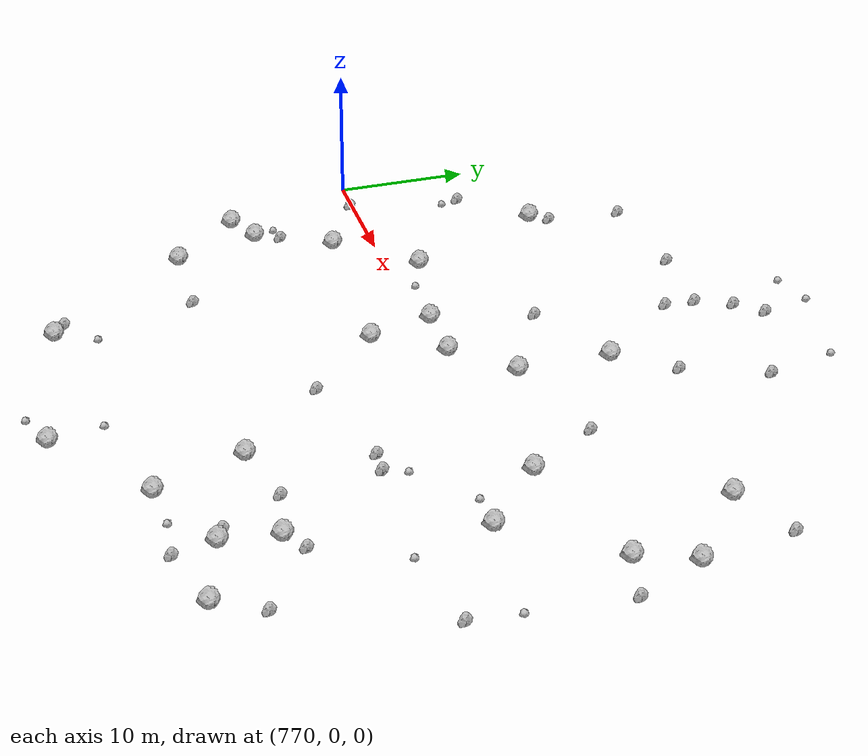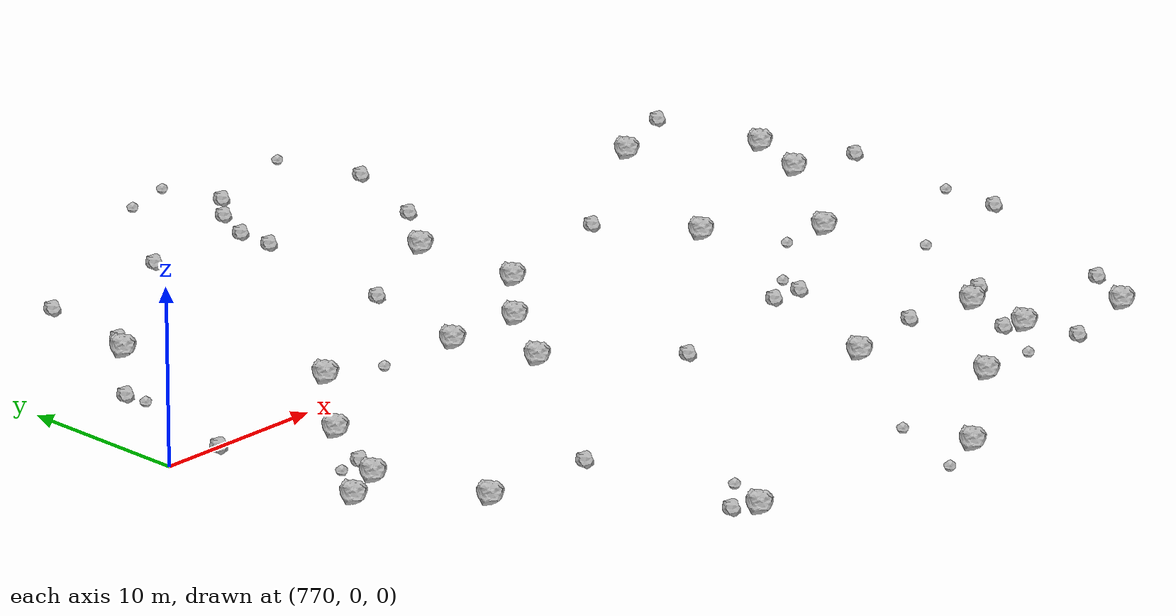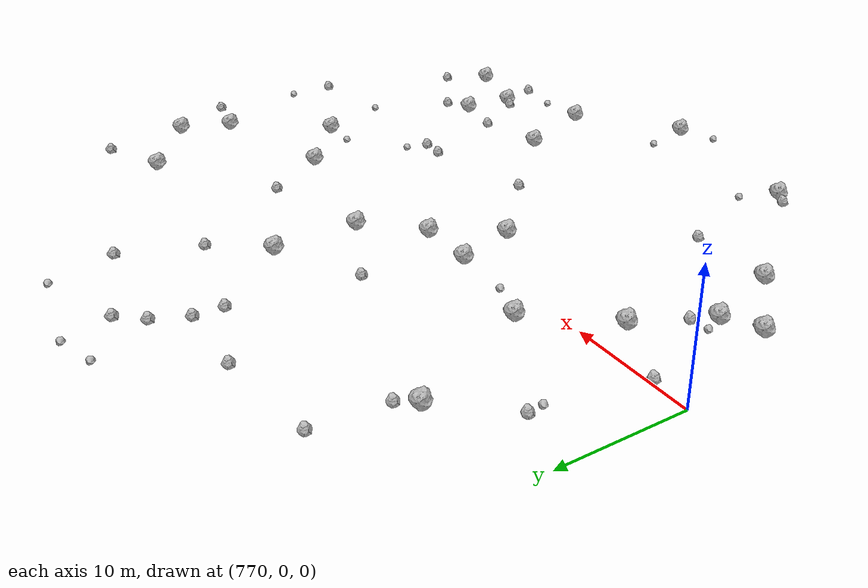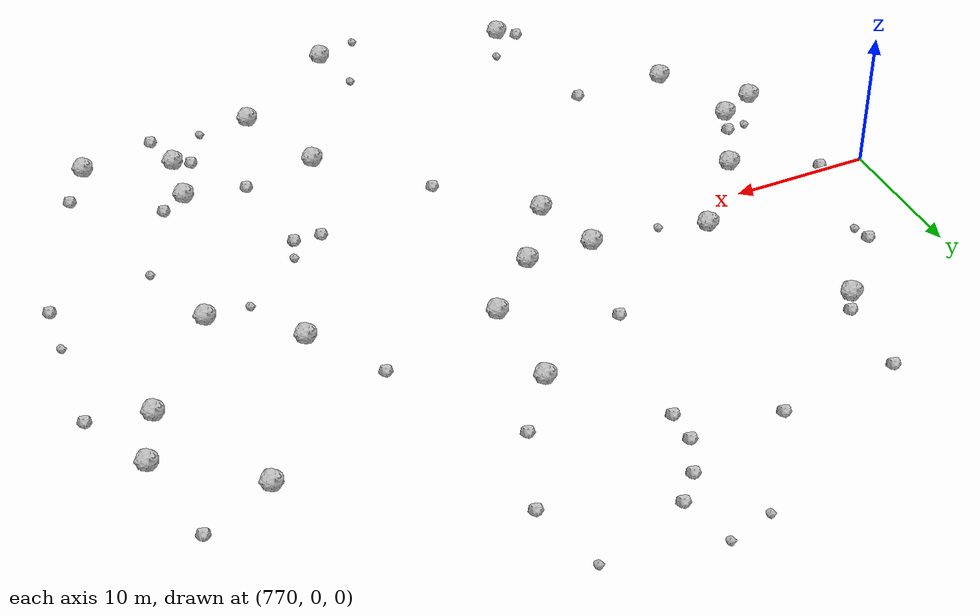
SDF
<sdf version="1.6">
 <world name="default">
  <include><uri>model://sun</uri></include>
  <model name="rock1_20_4">
   <include><uri>model://rock1</uri><pose>819.2122267680818 13.726930822318444 0.5 0 0 0</pose></include>
  </model>
  <model name="rock1_20_5">
   <include><uri>model://rock1</uri><pose>812.8698910632947 2.13392403625879 0.5 0 0 0</pose></include>
  </model>
  <model name="rock1_20_6">
   <include><uri>model://rock1</uri><pose>823.7663745739494 5.025370743478618 0.5 0 0 0</pose></include>
  </model>
  <model name="rock1_20_7">
   <include><uri>model://rock1</uri><pose>800.767374884966 4.966036264660211 0.5 0 0 0</pose></include>
  </model>
  <model name="rock1_20_8">
   <include><uri>model://rock1</uri><pose>805.7972809907315 -15.871346316119226 0.5 0 0 0</pose></include>
  </model>
  <model name="rock1_20_9">
   <include><uri>model://rock1</uri><pose>800.6672698656027 11.929296679306134 0.5 0 0 0</pose></include>
  </model>
  <model name="rock1_20_10">
   <include><uri>model://rock1</uri><pose>814.9256359065473 -19.624620930250273 0.5 0 0 0</pose></include>
  </model>
  <model name="rock1_20_11">
   <include><uri>model://rock1</uri><pose>808.3736025417923 -22.591839433050986 0.5 0 0 0</pose></include>
  </model>
  <model name="rock1_20_12">
   <include><uri>model://rock1</uri><pose>776.1875913763228 -8.725887405657822 0.5 0 0 0</pose></include>
  </model>
  <model name="rock1_20_13">
   <include><uri>model://rock1</uri><pose>778.232004607283 -15.144697974699175 0.5 0 0 0</pose></include>
  </model>
  <model name="rock1_20_14">
   <include><uri>model://rock1</uri><pose>818.123664055931 -2.297101878637946 0.5 0 0 0</pose></include>
  </model>
  <model name="rock1_20_15">
   <include><uri>model://rock1</uri><pose>779.0287651748309 -3.1421774853385003 0.5 0 0 0</pose></include>
  </model>
  <model name="rock1_20_16">
   <include><uri>model://rock1</uri><pose>825.3625804720275 9.085005775262786 0.5 0 0 0</pose></include>
  </model>
  <model name="rock1_20_17">
   <include><uri>model://rock1</uri><pose>800.5843930082755 -28.35805222895126 0.5 0 0 0</pose></include>
  </model>
  <model name="rock1_20_18">
   <include><uri>model://rock1</uri><pose>796.76404288395 0.9531455506280935 0.5 0 0 0</pose></include>
  </model>
  <model name="rock1_20_19">
   <include><uri>model://rock1</uri><pose>791.9983122103687 0.9939554064657976 0.5 0 0 0</pose></include>
  </model>
  <model name="rock1_20_20">
   <include><uri>model://rock1</uri><pose>786.8141923905898 -25.932583552114814 0.5 0 0 0</pose></include>
  </model>
  <model name="rock1_20_21">
   <include><uri>model://rock1</uri><pose>820.975538396199 -21.386264026928657 0.5 0 0 0</pose></include>
  </model>
  <model name="rock1_20_22">
   <include><uri>model://rock1</uri><pose>793.444368105625 -3.9052219395286905 0.5 0 0 0</pose></include>
  </model>
  <model name="rock1_20_23">
   <include><uri>model://rock1</uri><pose>773.4678252715418 -10.028626732308485 0.5 0 0 0</pose></include>
  </model>
  <model name="rock1_20_24">
   <include><uri>model://rock1</uri><pose>815.416069218849 -15.494813719446437 0.5 0 0 0</pose></include>
  </model>
  <model name="rock1_20_25">
   <include><uri>model://rock1</uri><pose>783.8724518140875 2.4659675741417644 0.5 0 0 0</pose></include>
  </model>
  <model name="rock1_20_26">
   <include><uri>model://rock1</uri><pose>779.0170532266636 12.905233162074921 0.5 0 0 0</pose></include>
  </model>
  <model name="rock2_20_0">
   <include><uri>model://rock2</uri><pose>788.781460003559 20.82332962483406 0.3 0 0 0</pose></include>
  </model>
  <model name="rock2_20_1">
   <include><uri>model://rock2</uri><pose>824.1145693096316 16.015499300134778 0.3 0 0 0</pose></include>
  </model>
  <model name="rock2_20_2">
   <include><uri>model://rock2</uri><pose>773.236584625596 -0.2887837342770929 0.3 0 0 0</pose></include>
  </model>
  <model name="rock2_20_3">
   <include><uri>model://rock2</uri><pose>784.9249357601343 -15.357742992389188 0.3 0 0 0</pose></include>
  </model>
  <model name="rock2_20_4">
   <include><uri>model://rock2</uri><pose>817.1877962687516 -14.352855332947973 0.3 0 0 0</pose></include>
  </model>
  <model name="rock2_20_5">
   <include><uri>model://rock2</uri><pose>803.7610284520342 16.01082752088812 0.3 0 0 0</pose></include>
  </model>
  <model name="rock2_20_6">
   <include><uri>model://rock2</uri><pose>785.5333850152673 -25.06091136880211 0.3 0 0 0</pose></include>
  </model>
  <model name="rock2_20_7">
   <include><uri>model://rock2</uri><pose>799.239207884373 -9.374820069664736 0.3 0 0 0</pose></include>
  </model>
  <model name="rock2_20_8">
   <include><uri>model://rock2</uri><pose>810.1531161104435 -7.534109779792647 0.3 0 0 0</pose></include>
  </model>
  <model name="rock2_20_9">
   <include><uri>model://rock2</uri><pose>813.7368690168886 -19.07438994867377 0.3 0 0 0</pose></include>
  </model>
  <model name="rock2_20_10">
   <include><uri>model://rock2</uri><pose>780.3091576227553 19.909031166130404 0.3 0 0 0</pose></include>
  </model>
  <model name="rock2_20_11">
   <include><uri>model://rock2</uri><pose>806.1034666915405 22.10004656372847 0.3 0 0 0</pose></include>
  </model>
  <model name="rock2_20_12">
   <include><uri>model://rock2</uri><pose>796.3718677732103 23.19037551812452 0.3 0 0 0</pose></include>
  </model>
  <model name="rock2_20_13">
   <include><uri>model://rock2</uri><pose>795.0902903456181 18.2722659777829 0.3 0 0 0</pose></include>
  </model>
  <model name="rock2_20_14">
   <include><uri>model://rock2</uri><pose>795.1472368231631 20.571224280368412 0.3 0 0 0</pose></include>
  </model>
  <model name="rock2_20_15">
   <include><uri>model://rock2</uri><pose>793.7089021794848 8.498677074762938 0.3 0 0 0</pose></include>
  </model>
  <model name="rock2_20_16">
   <include><uri>model://rock2</uri><pose>822.7948286285163 -18.024385074496934 0.3 0 0 0</pose></include>
  </model>
  <model name="rock2_20_17">
   <include><uri>model://rock2</uri><pose>779.8799610919257 14.273919139191605 0.3 0 0 0</pose></include>
  </model>
  <model name="rock2_20_18">
   <include><uri>model://rock2</uri><pose>811.1050899273256 -14.668255922490356 0.3 0 0 0</pose></include>
  </model>
  <model name="rock2_20_19">
   <include><uri>model://rock2</uri><pose>774.6628461654554 8.232855976013617 0.3 0 0 0</pose></include>
  </model>
  <model name="rock2_20_20">
   <include><uri>model://rock2</uri><pose>827.0880069235768 -6.911397239155839 0.3 0 0 0</pose></include>
  </model>
  <model name="rock2_20_21">
   <include><uri>model://rock2</uri><pose>815.6294820280527 -22.712746357231914 0.3 0 0 0</pose></include>
  </model>
  <model name="rock2_20_22">
   <include><uri>model://rock2</uri><pose>827.7775006410365 4.098923380941599 0.3 0 0 0</pose></include>
  </model>
  <model name="rock2_20_23">
   <include><uri>model://rock2</uri><pose>798.0460738123323 25.055272689734146 0.3 0 0 0</pose></include>
  </model>
  <model name="rock2_20_24">
   <include><uri>model://rock2</uri><pose>809.4523994659032 7.341302595084592 0.3 0 0 0</pose></include>
  </model>
  <model name="rock2_20_25">
   <include><uri>model://rock2</uri><pose>808.2450484073659 -7.414144308580589 0.3 0 0 0</pose></include>
  </model>
  <model name="rock2_20_26">
   <include><uri>model://rock2</uri><pose>776.9583117044303 -6.871266827330452 0.3 0 0 0</pose></include>
  </model>
  <model name="rock3_20_0">
   <include><uri>model://rock3</uri><pose>797.4656848916356 -29.447114012635815 0.2 0 0 0</pose></include>
  </model>
  <model name="rock3_20_1">
   <include><uri>model://rock3</uri><pose>797.0106453705994 28.77599198443479 0.2 0 0 0</pose></include>
  </model>
  <model name="rock3_20_2">
   <include><uri>model://rock3</uri><pose>815.0166422592669 -2.270737488174774 0.2 0 0 0</pose></include>
  </model>
  <model name="rock3_20_3">
   <include><uri>model://rock3</uri><pose>775.4589376415593 -7.102416752611365 0.2 0 0 0</pose></include>
  </model>
  <model name="rock3_20_4">
   <include><uri>model://rock3</uri><pose>804.6461648158307 27.307428660864986 0.2 0 0 0</pose></include>
  </model>
  <model name="rock3_20_5">
   <include><uri>model://rock3</uri><pose>827.2566855492278 -3.2346140422682623 0.2 0 0 0</pose></include>
  </model>
  <model name="rock3_20_6">
   <include><uri>model://rock3</uri><pose>820.0024077764432 -8.093915905329148 0.2 0 0 0</pose></include>
  </model>
  <model name="rock3_20_7">
   <include><uri>model://rock3</uri><pose>774.8822547650934 6.895997855955677 0.2 0 0 0</pose></include>
  </model>
  <model name="rock3_20_8">
   <include><uri>model://rock3</uri><pose>788.1057070873898 -22.959664708709525 0.2 0 0 0</pose></include>
  </model>
  <model name="rock3_20_9">
   <include><uri>model://rock3</uri><pose>793.8556809791114 27.857068281652275 0.2 0 0 0</pose></include>
  </model>
  <model name="rock3_20_10">
   <include><uri>model://rock3</uri><pose>810.7055313855961 -5.857332231055775 0.2 0 0 0</pose></include>
  </model>
  <model name="rock3_20_11">
   <include><uri>model://rock3</uri><pose>812.0484147353667 -22.31208046814893 0.2 0 0 0</pose></include>
  </model>
  <model name="rock3_20_12">
   <include><uri>model://rock3</uri><pose>799.5716925056205 -24.35673742586733 0.2 0 0 0</pose></include>
  </model>
  <model name="rock3_20_13">
   <include><uri>model://rock3</uri><pose>787.0219969026189 1.2720487659062734 0.2 0 0 0</pose></include>
  </model>
  <model name="rock3_20_14">
   <include><uri>model://rock3</uri><pose>810.2527256307498 -7.5721548150483144 0.2 0 0 0</pose></include>
  </model>
 </world>
</sdf>
